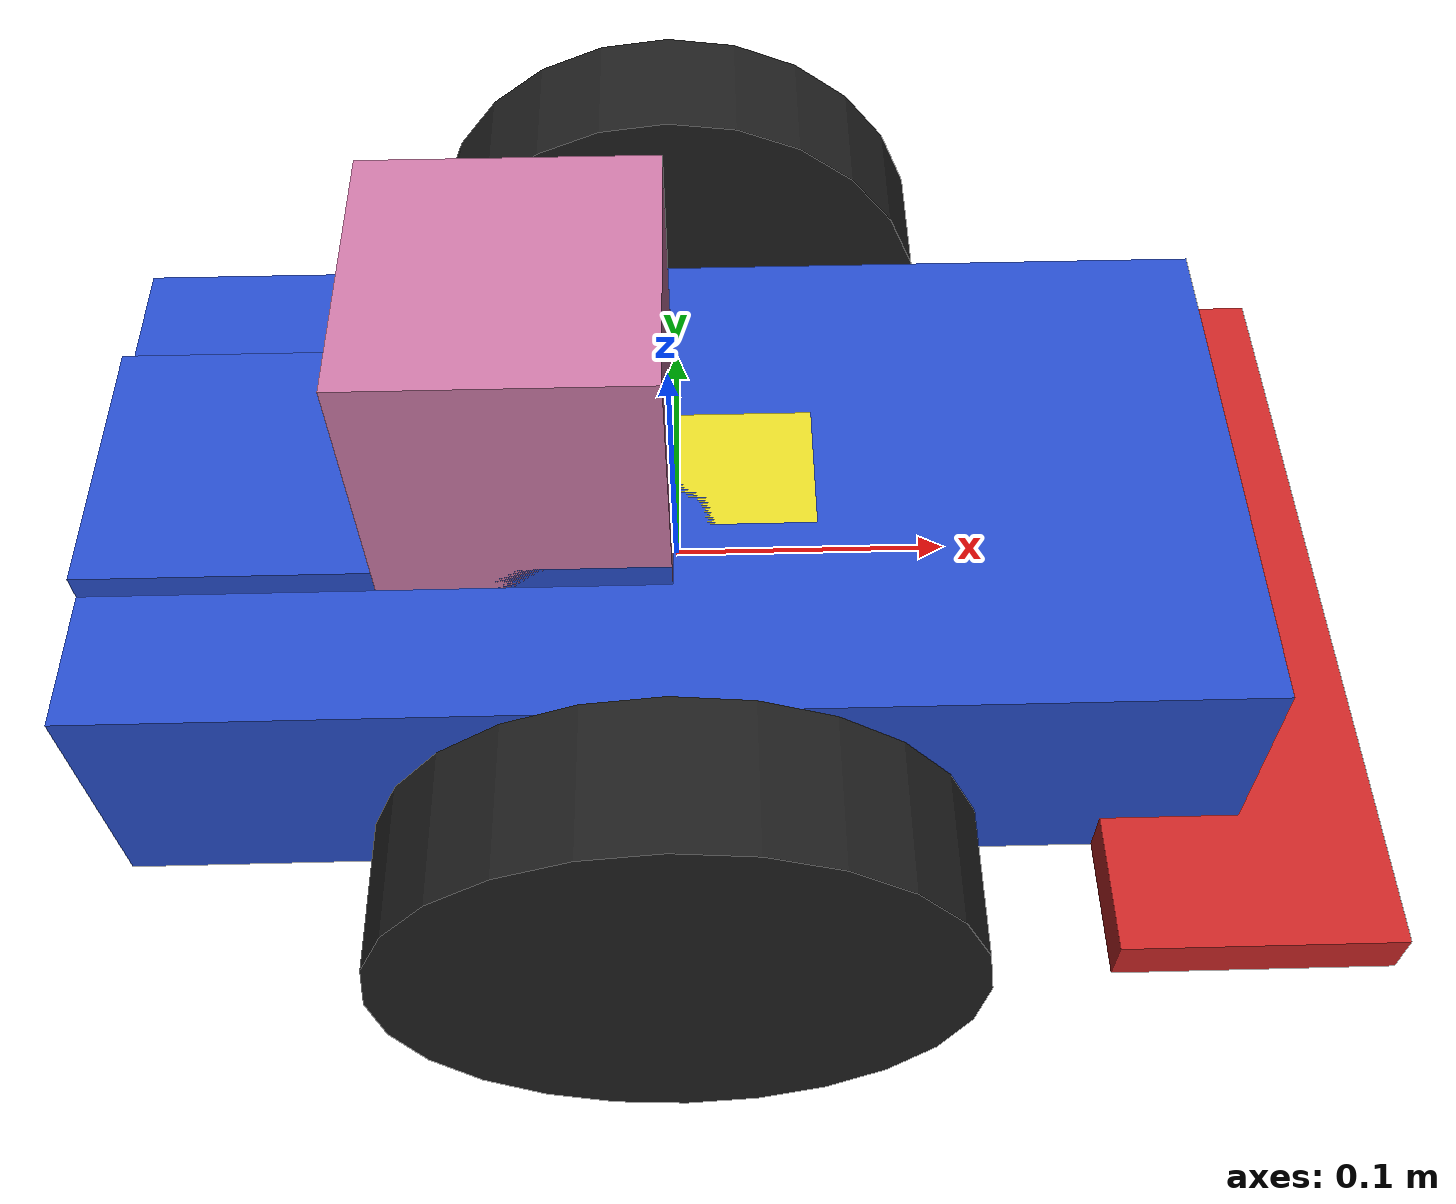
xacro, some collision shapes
<?xml version='1.0'?>

<robot name="udacity_bot" xmlns:xacro="http://www.ros.org/wiki/xacro">

  <xacro:include filename="$(find udacity_bot)/urdf/udacity_bot.gazebo" />

  <link name="robot_footprint"></link>

  <joint name="robot_footprint_joint" type="fixed">
    <origin xyz="0 0 0" rpy="0 0 0" />
    <parent link="robot_footprint"/>
    <child link="chassis" />
  </joint>

  <link name='chassis'>
    <pose>0 0 0.1 0 0 0</pose>

    <inertial>
      <mass value="15.0"/>
      <origin xyz="0.0 0 0" rpy=" 0 0 0"/>
      <inertia
          ixx="0.1" ixy="0" ixz="0"
          iyy="0.1" iyz="0"
          izz="0.1"
      />
    </inertial>

    <collision name='collision'>
      <origin xyz="0 0 0" rpy=" 0 0 0"/>
      <geometry>
        <box size=".5 .2 .1"/>
      </geometry>
    </collision>

    <visual name='base_chassis_visual'>
      <origin xyz="0 0 0" rpy=" 0 0 0"/>
      <geometry>
        <box size=".4 .2 .1"/>
      </geometry>
    </visual>
    <visual name='top_chassis_visual'>
      <origin xyz="-0.1 0 0.03" rpy=" 0 0 0"/>
      <geometry>
        <box size=".2 .1 .06"/>
      </geometry>
    </visual>

    <collision name='back_caster_collision'>
      <origin xyz="-0.15 0 -0.05" rpy=" 0 0 0"/>
      <geometry>
        <sphere radius="0.0499"/>
      </geometry>
      <surface>
        <friction>
          <ode>
            <mu>0</mu>
            <mu2>0</mu2>
            <slip1>1.0</slip1>
            <slip2>1.0</slip2>
          </ode>
        </friction>
      </surface>
    </collision>

    <visual name='back_caster_visual'>
      <origin xyz="-0.15 0 -0.05" rpy=" 0 0 0"/>
      <geometry>
        <sphere radius="0.05"/>
      </geometry>
    </visual>

    <collision name='front_caster_collision'>
      <origin xyz="0.15 0 -0.05" rpy=" 0 0 0"/>
      <geometry>
        <sphere radius="0.0499"/>
      </geometry>
      <surface>
        <friction>
          <ode>
            <mu>0</mu>
            <mu2>0</mu2>
            <slip1>1.0</slip1>
            <slip2>1.0</slip2>
          </ode>
        </friction>
      </surface>
    </collision>

    <visual name='front_caster_visual'>
      <origin xyz="0.15 0 -0.05" rpy=" 0 0 0"/>
      <geometry>
        <sphere radius="0.05"/>
      </geometry>
    </visual>

  </link>

  <link name="front_wing">
      <visual name='front_wing_visual'>
      <origin xyz="0 0 0" rpy=" 0 0 0"/>
      <geometry>
        <box size=".1 .3 0.02"/>
      </geometry>
    </visual>
  </link>
  <joint type="fixed" name="front_wing_joint">
    <origin xyz="0.2 0 -0.04" rpy=" 0 0 0"/>
    <child link="front_wing"/>
    <parent link="chassis"/>
  </joint>

  <link name="left_wheel">
    <inertial>
      <mass value="5.0"/>
      <origin xyz="0 0 0" rpy=" 0 1.5707 1.5707"/>
      <inertia
          ixx="0.1" ixy="0" ixz="0"
          iyy="0.1" iyz="0"
          izz="0.1"
      />
    </inertial>

    <collision name='left_wheel_collision'>
      <origin xyz="0 0 0" rpy=" 0 1.5707 1.5707"/>
      <geometry>
        <cylinder radius="0.1" length="0.05" />
      </geometry>
    </collision>

    <visual name='left_wheel_visual'>
      <origin xyz="0 0 0" rpy=" 0 1.5707 1.5707"/>
      <geometry>
        <cylinder radius="0.1" length="0.05" />
      </geometry>
    </visual>
  </link>

  <link name="right_wheel">
    <inertial>
      <mass value="5.0"/>
      <origin xyz="0 0 0" rpy=" 0 1.5707 1.5707"/>
      <inertia
          ixx="0.1" ixy="0" ixz="0"
          iyy="0.1" iyz="0"
          izz="0.1"
      />
    </inertial>

    <collision name='right_wheel_collision'>
      <origin xyz="0 0 0" rpy=" 0 1.5707 1.5707"/>
      <geometry>
        <cylinder radius="0.1" length="0.05" />
      </geometry>
    </collision>

    <visual name='right_wheel_visual'>
      <origin xyz="0 0 0" rpy=" 0 1.5707 1.5707"/>
      <geometry>
        <cylinder radius="0.1" length="0.05" />
      </geometry>
    </visual>
  </link>

  <joint type="continuous" name="left_wheel_hinge">
    <origin xyz="0 0.15 0" rpy="0 0 0"/>
    <child link="left_wheel"/>
    <parent link="chassis"/>
    <axis xyz="0 1 0" rpy="0 0 0"/>
    <limit effort="10000" velocity="1000"/>
    <joint_properties damping="1.0" friction="1.0"/>
  </joint>

  <joint type="continuous" name="right_wheel_hinge">
    <origin xyz="0 -0.15 0" rpy="0 0 0"/>
    <child link="right_wheel"/>
    <parent link="chassis"/>
    <axis xyz="0 1 0" rpy="0 0 0"/>
    <limit effort="10000" velocity="1000"/>
    <joint_properties damping="1.0" friction="1.0"/>
  </joint>

  <link name="camera">
    <inertial>
      <mass value=".1"/>
      <origin xyz="0 0 0" rpy="0 0 0"/>
      <inertia
          ixx="1e-6" ixy="0" ixz="0"
          iyy="1e-6" iyz="0"
          izz="1e-6"
      />
    </inertial>

    <collision name='camera_collision'>
      <origin xyz="0 0 0" rpy="0 0 0"/>
      <geometry>
        <box size="0.05 0.05 0.05"/>
      </geometry>
    </collision>

    <visual name='camera_visual'>
      <origin xyz="0 0 0" rpy="0 0 0"/>
      <geometry>
        <box size="0.05 0.05 0.05"/>
      </geometry>
    </visual>
  </link>

  <joint type="fixed" name="camera_joint">
    <origin xyz="0.025 0 0.025" rpy="0 0 0"/>
    <child link="camera"/>
    <parent link="chassis"/>
  </joint>

  <link name="hokuyo">
    <inertial>
      <mass value=".1"/>
      <origin xyz="0 0 0" rpy="0 0 0"/>
      <inertia
          ixx="1e-6" ixy="0" ixz="0"
          iyy="1e-6" iyz="0"
          izz="1e-6"
      />
    </inertial>

    <collision name='hokuyo_collision'>
      <origin xyz="0 0 0" rpy="0 0 0"/>
      <geometry>
        <box size="0.1 0.1 0.1"/>
      </geometry>
    </collision>

    <visual name='hokuyo_visual'>
      <origin xyz="0 0 0" rpy="0 0 0"/>
      <geometry>
        <mesh filename="package://udacity_bot/meshes/hokuyo.dae"/>
      </geometry>
    </visual>
  </link>

  <joint type="fixed" name="hokuyo_joint">
    <origin xyz="-.05 0 .1" rpy="0 0 0"/>
    <child link="hokuyo"/>
    <parent link="chassis"/>
  </joint>

</robot>
